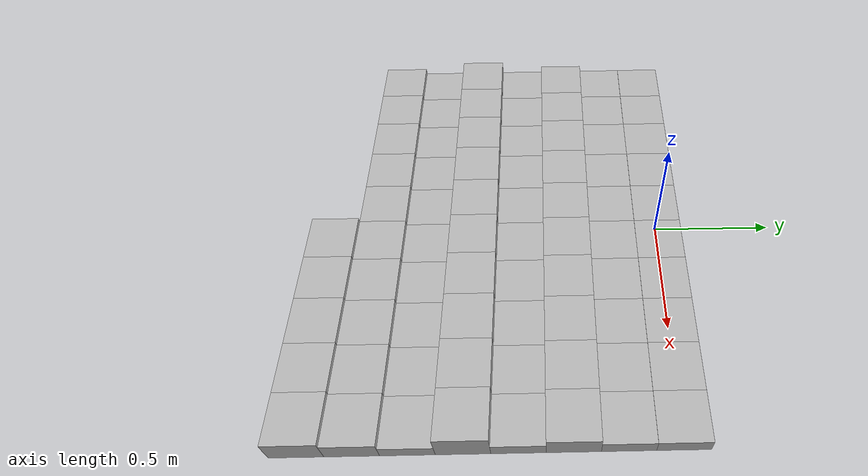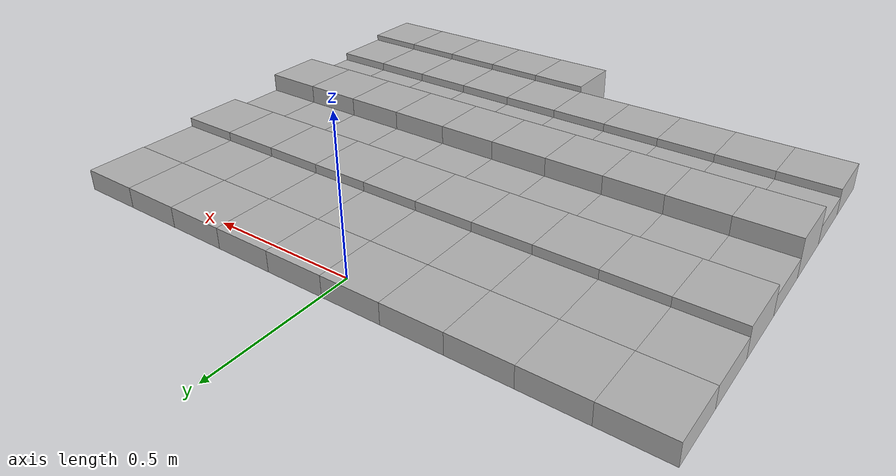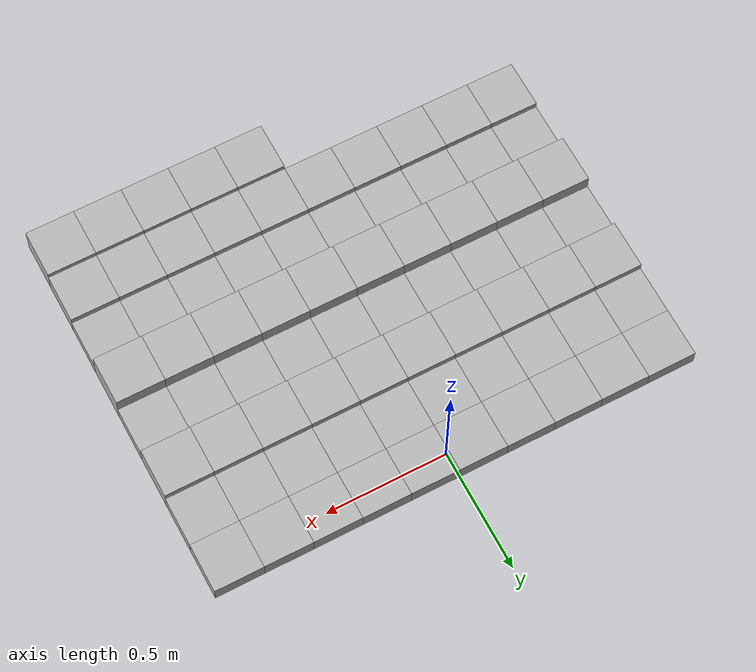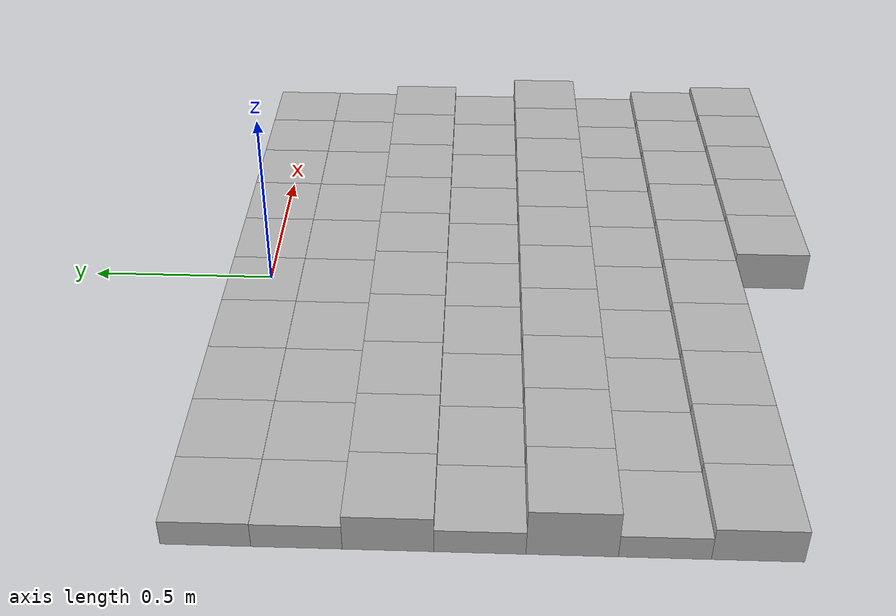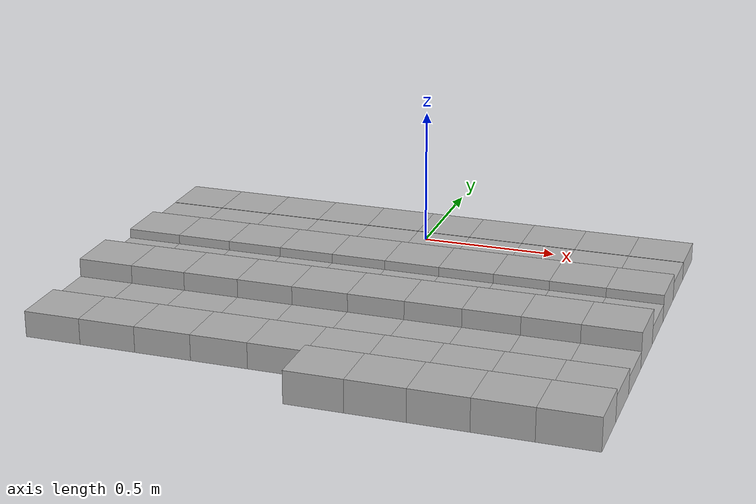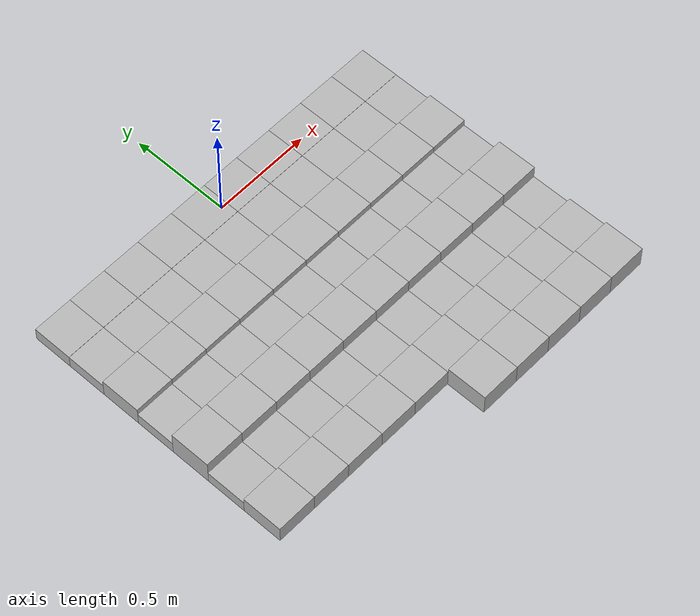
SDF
<sdf version="1.6">
 <model name="Terrain">
  <static>true</static>
  <link name="box_0_0">
   <pose>-0.9 0.0 0.0348015889081 0 0 0</pose>
   <inertial>
    <mass>1.0</mass>
    <inertia><ixx>0.0</ixx><ixy>0.0</ixy><ixz>0.0</ixz><iyy>0.0</iyy><iyz>0.0</iyz><izz>0.0</izz></inertia>
   </inertial>
   <collision name="collision"><geometry><box><size>0.2 0.2 0.0696031778162</size></box></geometry></collision>
   <visual name="visual"><geometry><box><size>0.2 0.2 0.0696031778162</size></box></geometry></visual>
  </link>
  <link name="box_0_1">
   <pose>-0.7 0.0 0.0348015889081 0 0 0</pose>
   <inertial>
    <mass>1.0</mass>
    <inertia><ixx>0.0</ixx><ixy>0.0</ixy><ixz>0.0</ixz><iyy>0.0</iyy><iyz>0.0</iyz><izz>0.0</izz></inertia>
   </inertial>
   <collision name="collision"><geometry><box><size>0.2 0.2 0.0696031778162</size></box></geometry></collision>
   <visual name="visual"><geometry><box><size>0.2 0.2 0.0696031778162</size></box></geometry></visual>
  </link>
  <link name="box_0_2">
   <pose>-0.5 0.0 0.0348015889081 0 0 0</pose>
   <inertial>
    <mass>1.0</mass>
    <inertia><ixx>0.0</ixx><ixy>0.0</ixy><ixz>0.0</ixz><iyy>0.0</iyy><iyz>0.0</iyz><izz>0.0</izz></inertia>
   </inertial>
   <collision name="collision"><geometry><box><size>0.2 0.2 0.0696031778162</size></box></geometry></collision>
   <visual name="visual"><geometry><box><size>0.2 0.2 0.0696031778162</size></box></geometry></visual>
  </link>
  <link name="box_0_3">
   <pose>-0.3 0.0 0.0348015889081 0 0 0</pose>
   <inertial>
    <mass>1.0</mass>
    <inertia><ixx>0.0</ixx><ixy>0.0</ixy><ixz>0.0</ixz><iyy>0.0</iyy><iyz>0.0</iyz><izz>0.0</izz></inertia>
   </inertial>
   <collision name="collision"><geometry><box><size>0.2 0.2 0.0696031778162</size></box></geometry></collision>
   <visual name="visual"><geometry><box><size>0.2 0.2 0.0696031778162</size></box></geometry></visual>
  </link>
  <link name="box_0_4">
   <pose>-0.1 0.0 0.0348015889081 0 0 0</pose>
   <inertial>
    <mass>1.0</mass>
    <inertia><ixx>0.0</ixx><ixy>0.0</ixy><ixz>0.0</ixz><iyy>0.0</iyy><iyz>0.0</iyz><izz>0.0</izz></inertia>
   </inertial>
   <collision name="collision"><geometry><box><size>0.2 0.2 0.0696031778162</size></box></geometry></collision>
   <visual name="visual"><geometry><box><size>0.2 0.2 0.0696031778162</size></box></geometry></visual>
  </link>
  <link name="box_0_5">
   <pose>0.1 0.0 0.0348015889081 0 0 0</pose>
   <inertial>
    <mass>1.0</mass>
    <inertia><ixx>0.0</ixx><ixy>0.0</ixy><ixz>0.0</ixz><iyy>0.0</iyy><iyz>0.0</iyz><izz>0.0</izz></inertia>
   </inertial>
   <collision name="collision"><geometry><box><size>0.2 0.2 0.0696031778162</size></box></geometry></collision>
   <visual name="visual"><geometry><box><size>0.2 0.2 0.0696031778162</size></box></geometry></visual>
  </link>
  <link name="box_0_6">
   <pose>0.3 0.0 0.0348015889081 0 0 0</pose>
   <inertial>
    <mass>1.0</mass>
    <inertia><ixx>0.0</ixx><ixy>0.0</ixy><ixz>0.0</ixz><iyy>0.0</iyy><iyz>0.0</iyz><izz>0.0</izz></inertia>
   </inertial>
   <collision name="collision"><geometry><box><size>0.2 0.2 0.0696031778162</size></box></geometry></collision>
   <visual name="visual"><geometry><box><size>0.2 0.2 0.0696031778162</size></box></geometry></visual>
  </link>
  <link name="box_0_7">
   <pose>0.5 0.0 0.0348015889081 0 0 0</pose>
   <inertial>
    <mass>1.0</mass>
    <inertia><ixx>0.0</ixx><ixy>0.0</ixy><ixz>0.0</ixz><iyy>0.0</iyy><iyz>0.0</iyz><izz>0.0</izz></inertia>
   </inertial>
   <collision name="collision"><geometry><box><size>0.2 0.2 0.0696031778162</size></box></geometry></collision>
   <visual name="visual"><geometry><box><size>0.2 0.2 0.0696031778162</size></box></geometry></visual>
  </link>
  <link name="box_0_8">
   <pose>0.7 0.0 0.0348015889081 0 0 0</pose>
   <inertial>
    <mass>1.0</mass>
    <inertia><ixx>0.0</ixx><ixy>0.0</ixy><ixz>0.0</ixz><iyy>0.0</iyy><iyz>0.0</iyz><izz>0.0</izz></inertia>
   </inertial>
   <collision name="collision"><geometry><box><size>0.2 0.2 0.0696031778162</size></box></geometry></collision>
   <visual name="visual"><geometry><box><size>0.2 0.2 0.0696031778162</size></box></geometry></visual>
  </link>
  <link name="box_0_9">
   <pose>0.9 0.0 0.0348015889081 0 0 0</pose>
   <inertial>
    <mass>1.0</mass>
    <inertia><ixx>0.0</ixx><ixy>0.0</ixy><ixz>0.0</ixz><iyy>0.0</iyy><iyz>0.0</iyz><izz>0.0</izz></inertia>
   </inertial>
   <collision name="collision"><geometry><box><size>0.2 0.2 0.0696031778162</size></box></geometry></collision>
   <visual name="visual"><geometry><box><size>0.2 0.2 0.0696031778162</size></box></geometry></visual>
  </link>
  <link name="box_1_0">
   <pose>-0.9 -0.2 0.0341718155319 0 0 0</pose>
   <inertial>
    <mass>1.0</mass>
    <inertia><ixx>0.0</ixx><ixy>0.0</ixy><ixz>0.0</ixz><iyy>0.0</iyy><iyz>0.0</iyz><izz>0.0</izz></inertia>
   </inertial>
   <collision name="collision"><geometry><box><size>0.2 0.2 0.0683436310638</size></box></geometry></collision>
   <visual name="visual"><geometry><box><size>0.2 0.2 0.0683436310638</size></box></geometry></visual>
  </link>
  <link name="box_1_1">
   <pose>-0.7 -0.2 0.0341718155319 0 0 0</pose>
   <inertial>
    <mass>1.0</mass>
    <inertia><ixx>0.0</ixx><ixy>0.0</ixy><ixz>0.0</ixz><iyy>0.0</iyy><iyz>0.0</iyz><izz>0.0</izz></inertia>
   </inertial>
   <collision name="collision"><geometry><box><size>0.2 0.2 0.0683436310638</size></box></geometry></collision>
   <visual name="visual"><geometry><box><size>0.2 0.2 0.0683436310638</size></box></geometry></visual>
  </link>
  <link name="box_1_2">
   <pose>-0.5 -0.2 0.0341718155319 0 0 0</pose>
   <inertial>
    <mass>1.0</mass>
    <inertia><ixx>0.0</ixx><ixy>0.0</ixy><ixz>0.0</ixz><iyy>0.0</iyy><iyz>0.0</iyz><izz>0.0</izz></inertia>
   </inertial>
   <collision name="collision"><geometry><box><size>0.2 0.2 0.0683436310638</size></box></geometry></collision>
   <visual name="visual"><geometry><box><size>0.2 0.2 0.0683436310638</size></box></geometry></visual>
  </link>
  <link name="box_1_3">
   <pose>-0.3 -0.2 0.0341718155319 0 0 0</pose>
   <inertial>
    <mass>1.0</mass>
    <inertia><ixx>0.0</ixx><ixy>0.0</ixy><ixz>0.0</ixz><iyy>0.0</iyy><iyz>0.0</iyz><izz>0.0</izz></inertia>
   </inertial>
   <collision name="collision"><geometry><box><size>0.2 0.2 0.0683436310638</size></box></geometry></collision>
   <visual name="visual"><geometry><box><size>0.2 0.2 0.0683436310638</size></box></geometry></visual>
  </link>
  <link name="box_1_4">
   <pose>-0.1 -0.2 0.0341718155319 0 0 0</pose>
   <inertial>
    <mass>1.0</mass>
    <inertia><ixx>0.0</ixx><ixy>0.0</ixy><ixz>0.0</ixz><iyy>0.0</iyy><iyz>0.0</iyz><izz>0.0</izz></inertia>
   </inertial>
   <collision name="collision"><geometry><box><size>0.2 0.2 0.0683436310638</size></box></geometry></collision>
   <visual name="visual"><geometry><box><size>0.2 0.2 0.0683436310638</size></box></geometry></visual>
  </link>
  <link name="box_1_5">
   <pose>0.1 -0.2 0.0341718155319 0 0 0</pose>
   <inertial>
    <mass>1.0</mass>
    <inertia><ixx>0.0</ixx><ixy>0.0</ixy><ixz>0.0</ixz><iyy>0.0</iyy><iyz>0.0</iyz><izz>0.0</izz></inertia>
   </inertial>
   <collision name="collision"><geometry><box><size>0.2 0.2 0.0683436310638</size></box></geometry></collision>
   <visual name="visual"><geometry><box><size>0.2 0.2 0.0683436310638</size></box></geometry></visual>
  </link>
  <link name="box_1_6">
   <pose>0.3 -0.2 0.0341718155319 0 0 0</pose>
   <inertial>
    <mass>1.0</mass>
    <inertia><ixx>0.0</ixx><ixy>0.0</ixy><ixz>0.0</ixz><iyy>0.0</iyy><iyz>0.0</iyz><izz>0.0</izz></inertia>
   </inertial>
   <collision name="collision"><geometry><box><size>0.2 0.2 0.0683436310638</size></box></geometry></collision>
   <visual name="visual"><geometry><box><size>0.2 0.2 0.0683436310638</size></box></geometry></visual>
  </link>
  <link name="box_1_7">
   <pose>0.5 -0.2 0.0341718155319 0 0 0</pose>
   <inertial>
    <mass>1.0</mass>
    <inertia><ixx>0.0</ixx><ixy>0.0</ixy><ixz>0.0</ixz><iyy>0.0</iyy><iyz>0.0</iyz><izz>0.0</izz></inertia>
   </inertial>
   <collision name="collision"><geometry><box><size>0.2 0.2 0.0683436310638</size></box></geometry></collision>
   <visual name="visual"><geometry><box><size>0.2 0.2 0.0683436310638</size></box></geometry></visual>
  </link>
  <link name="box_1_8">
   <pose>0.7 -0.2 0.0341718155319 0 0 0</pose>
   <inertial>
    <mass>1.0</mass>
    <inertia><ixx>0.0</ixx><ixy>0.0</ixy><ixz>0.0</ixz><iyy>0.0</iyy><iyz>0.0</iyz><izz>0.0</izz></inertia>
   </inertial>
   <collision name="collision"><geometry><box><size>0.2 0.2 0.0683436310638</size></box></geometry></collision>
   <visual name="visual"><geometry><box><size>0.2 0.2 0.0683436310638</size></box></geometry></visual>
  </link>
  <link name="box_1_9">
   <pose>0.9 -0.2 0.0341718155319 0 0 0</pose>
   <inertial>
    <mass>1.0</mass>
    <inertia><ixx>0.0</ixx><ixy>0.0</ixy><ixz>0.0</ixz><iyy>0.0</iyy><iyz>0.0</iyz><izz>0.0</izz></inertia>
   </inertial>
   <collision name="collision"><geometry><box><size>0.2 0.2 0.0683436310638</size></box></geometry></collision>
   <visual name="visual"><geometry><box><size>0.2 0.2 0.0683436310638</size></box></geometry></visual>
  </link>
  <link name="box_2_0">
   <pose>-0.9 -0.4 0.0497409913647 0 0 0</pose>
   <inertial>
    <mass>1.0</mass>
    <inertia><ixx>0.0</ixx><ixy>0.0</ixy><ixz>0.0</ixz><iyy>0.0</iyy><iyz>0.0</iyz><izz>0.0</izz></inertia>
   </inertial>
   <collision name="collision"><geometry><box><size>0.2 0.2 0.0994819827294</size></box></geometry></collision>
   <visual name="visual"><geometry><box><size>0.2 0.2 0.0994819827294</size></box></geometry></visual>
  </link>
  <link name="box_2_1">
   <pose>-0.7 -0.4 0.0497409913647 0 0 0</pose>
   <inertial>
    <mass>1.0</mass>
    <inertia><ixx>0.0</ixx><ixy>0.0</ixy><ixz>0.0</ixz><iyy>0.0</iyy><iyz>0.0</iyz><izz>0.0</izz></inertia>
   </inertial>
   <collision name="collision"><geometry><box><size>0.2 0.2 0.0994819827294</size></box></geometry></collision>
   <visual name="visual"><geometry><box><size>0.2 0.2 0.0994819827294</size></box></geometry></visual>
  </link>
  <link name="box_2_2">
   <pose>-0.5 -0.4 0.0497409913647 0 0 0</pose>
   <inertial>
    <mass>1.0</mass>
    <inertia><ixx>0.0</ixx><ixy>0.0</ixy><ixz>0.0</ixz><iyy>0.0</iyy><iyz>0.0</iyz><izz>0.0</izz></inertia>
   </inertial>
   <collision name="collision"><geometry><box><size>0.2 0.2 0.0994819827294</size></box></geometry></collision>
   <visual name="visual"><geometry><box><size>0.2 0.2 0.0994819827294</size></box></geometry></visual>
  </link>
  <link name="box_2_3">
   <pose>-0.3 -0.4 0.0497409913647 0 0 0</pose>
   <inertial>
    <mass>1.0</mass>
    <inertia><ixx>0.0</ixx><ixy>0.0</ixy><ixz>0.0</ixz><iyy>0.0</iyy><iyz>0.0</iyz><izz>0.0</izz></inertia>
   </inertial>
   <collision name="collision"><geometry><box><size>0.2 0.2 0.0994819827294</size></box></geometry></collision>
   <visual name="visual"><geometry><box><size>0.2 0.2 0.0994819827294</size></box></geometry></visual>
  </link>
  <link name="box_2_4">
   <pose>-0.1 -0.4 0.0497409913647 0 0 0</pose>
   <inertial>
    <mass>1.0</mass>
    <inertia><ixx>0.0</ixx><ixy>0.0</ixy><ixz>0.0</ixz><iyy>0.0</iyy><iyz>0.0</iyz><izz>0.0</izz></inertia>
   </inertial>
   <collision name="collision"><geometry><box><size>0.2 0.2 0.0994819827294</size></box></geometry></collision>
   <visual name="visual"><geometry><box><size>0.2 0.2 0.0994819827294</size></box></geometry></visual>
  </link>
  <link name="box_2_5">
   <pose>0.1 -0.4 0.0497409913647 0 0 0</pose>
   <inertial>
    <mass>1.0</mass>
    <inertia><ixx>0.0</ixx><ixy>0.0</ixy><ixz>0.0</ixz><iyy>0.0</iyy><iyz>0.0</iyz><izz>0.0</izz></inertia>
   </inertial>
   <collision name="collision"><geometry><box><size>0.2 0.2 0.0994819827294</size></box></geometry></collision>
   <visual name="visual"><geometry><box><size>0.2 0.2 0.0994819827294</size></box></geometry></visual>
  </link>
  <link name="box_2_6">
   <pose>0.3 -0.4 0.0497409913647 0 0 0</pose>
   <inertial>
    <mass>1.0</mass>
    <inertia><ixx>0.0</ixx><ixy>0.0</ixy><ixz>0.0</ixz><iyy>0.0</iyy><iyz>0.0</iyz><izz>0.0</izz></inertia>
   </inertial>
   <collision name="collision"><geometry><box><size>0.2 0.2 0.0994819827294</size></box></geometry></collision>
   <visual name="visual"><geometry><box><size>0.2 0.2 0.0994819827294</size></box></geometry></visual>
  </link>
  <link name="box_2_7">
   <pose>0.5 -0.4 0.0497409913647 0 0 0</pose>
   <inertial>
    <mass>1.0</mass>
    <inertia><ixx>0.0</ixx><ixy>0.0</ixy><ixz>0.0</ixz><iyy>0.0</iyy><iyz>0.0</iyz><izz>0.0</izz></inertia>
   </inertial>
   <collision name="collision"><geometry><box><size>0.2 0.2 0.0994819827294</size></box></geometry></collision>
   <visual name="visual"><geometry><box><size>0.2 0.2 0.0994819827294</size></box></geometry></visual>
  </link>
  <link name="box_2_8">
   <pose>0.7 -0.4 0.0497409913647 0 0 0</pose>
   <inertial>
    <mass>1.0</mass>
    <inertia><ixx>0.0</ixx><ixy>0.0</ixy><ixz>0.0</ixz><iyy>0.0</iyy><iyz>0.0</iyz><izz>0.0</izz></inertia>
   </inertial>
   <collision name="collision"><geometry><box><size>0.2 0.2 0.0994819827294</size></box></geometry></collision>
   <visual name="visual"><geometry><box><size>0.2 0.2 0.0994819827294</size></box></geometry></visual>
  </link>
  <link name="box_2_9">
   <pose>0.9 -0.4 0.0497409913647 0 0 0</pose>
   <inertial>
    <mass>1.0</mass>
    <inertia><ixx>0.0</ixx><ixy>0.0</ixy><ixz>0.0</ixz><iyy>0.0</iyy><iyz>0.0</iyz><izz>0.0</izz></inertia>
   </inertial>
   <collision name="collision"><geometry><box><size>0.2 0.2 0.0994819827294</size></box></geometry></collision>
   <visual name="visual"><geometry><box><size>0.2 0.2 0.0994819827294</size></box></geometry></visual>
  </link>
  <link name="box_3_0">
   <pose>-0.9 -0.6 0.0327592160162 0 0 0</pose>
   <inertial>
    <mass>1.0</mass>
    <inertia><ixx>0.0</ixx><ixy>0.0</ixy><ixz>0.0</ixz><iyy>0.0</iyy><iyz>0.0</iyz><izz>0.0</izz></inertia>
   </inertial>
   <collision name="collision"><geometry><box><size>0.2 0.2 0.0655184320325</size></box></geometry></collision>
   <visual name="visual"><geometry><box><size>0.2 0.2 0.0655184320325</size></box></geometry></visual>
  </link>
  <link name="box_3_1">
   <pose>-0.7 -0.6 0.0327592160162 0 0 0</pose>
   <inertial>
    <mass>1.0</mass>
    <inertia><ixx>0.0</ixx><ixy>0.0</ixy><ixz>0.0</ixz><iyy>0.0</iyy><iyz>0.0</iyz><izz>0.0</izz></inertia>
   </inertial>
   <collision name="collision"><geometry><box><size>0.2 0.2 0.0655184320325</size></box></geometry></collision>
   <visual name="visual"><geometry><box><size>0.2 0.2 0.0655184320325</size></box></geometry></visual>
  </link>
  <link name="box_3_2">
   <pose>-0.5 -0.6 0.0327592160162 0 0 0</pose>
   <inertial>
    <mass>1.0</mass>
    <inertia><ixx>0.0</ixx><ixy>0.0</ixy><ixz>0.0</ixz><iyy>0.0</iyy><iyz>0.0</iyz><izz>0.0</izz></inertia>
   </inertial>
   <collision name="collision"><geometry><box><size>0.2 0.2 0.0655184320325</size></box></geometry></collision>
   <visual name="visual"><geometry><box><size>0.2 0.2 0.0655184320325</size></box></geometry></visual>
  </link>
  <link name="box_3_3">
   <pose>-0.3 -0.6 0.0327592160162 0 0 0</pose>
   <inertial>
    <mass>1.0</mass>
    <inertia><ixx>0.0</ixx><ixy>0.0</ixy><ixz>0.0</ixz><iyy>0.0</iyy><iyz>0.0</iyz><izz>0.0</izz></inertia>
   </inertial>
   <collision name="collision"><geometry><box><size>0.2 0.2 0.0655184320325</size></box></geometry></collision>
   <visual name="visual"><geometry><box><size>0.2 0.2 0.0655184320325</size></box></geometry></visual>
  </link>
  <link name="box_3_4">
   <pose>-0.1 -0.6 0.0327592160162 0 0 0</pose>
   <inertial>
    <mass>1.0</mass>
    <inertia><ixx>0.0</ixx><ixy>0.0</ixy><ixz>0.0</ixz><iyy>0.0</iyy><iyz>0.0</iyz><izz>0.0</izz></inertia>
   </inertial>
   <collision name="collision"><geometry><box><size>0.2 0.2 0.0655184320325</size></box></geometry></collision>
   <visual name="visual"><geometry><box><size>0.2 0.2 0.0655184320325</size></box></geometry></visual>
  </link>
  <link name="box_3_5">
   <pose>0.1 -0.6 0.0327592160162 0 0 0</pose>
   <inertial>
    <mass>1.0</mass>
    <inertia><ixx>0.0</ixx><ixy>0.0</ixy><ixz>0.0</ixz><iyy>0.0</iyy><iyz>0.0</iyz><izz>0.0</izz></inertia>
   </inertial>
   <collision name="collision"><geometry><box><size>0.2 0.2 0.0655184320325</size></box></geometry></collision>
   <visual name="visual"><geometry><box><size>0.2 0.2 0.0655184320325</size></box></geometry></visual>
  </link>
  <link name="box_3_6">
   <pose>0.3 -0.6 0.0327592160162 0 0 0</pose>
   <inertial>
    <mass>1.0</mass>
    <inertia><ixx>0.0</ixx><ixy>0.0</ixy><ixz>0.0</ixz><iyy>0.0</iyy><iyz>0.0</iyz><izz>0.0</izz></inertia>
   </inertial>
   <collision name="collision"><geometry><box><size>0.2 0.2 0.0655184320325</size></box></geometry></collision>
   <visual name="visual"><geometry><box><size>0.2 0.2 0.0655184320325</size></box></geometry></visual>
  </link>
  <link name="box_3_7">
   <pose>0.5 -0.6 0.0327592160162 0 0 0</pose>
   <inertial>
    <mass>1.0</mass>
    <inertia><ixx>0.0</ixx><ixy>0.0</ixy><ixz>0.0</ixz><iyy>0.0</iyy><iyz>0.0</iyz><izz>0.0</izz></inertia>
   </inertial>
   <collision name="collision"><geometry><box><size>0.2 0.2 0.0655184320325</size></box></geometry></collision>
   <visual name="visual"><geometry><box><size>0.2 0.2 0.0655184320325</size></box></geometry></visual>
  </link>
  <link name="box_3_8">
   <pose>0.7 -0.6 0.0327592160162 0 0 0</pose>
   <inertial>
    <mass>1.0</mass>
    <inertia><ixx>0.0</ixx><ixy>0.0</ixy><ixz>0.0</ixz><iyy>0.0</iyy><iyz>0.0</iyz><izz>0.0</izz></inertia>
   </inertial>
   <collision name="collision"><geometry><box><size>0.2 0.2 0.0655184320325</size></box></geometry></collision>
   <visual name="visual"><geometry><box><size>0.2 0.2 0.0655184320325</size></box></geometry></visual>
  </link>
  <link name="box_3_9">
   <pose>0.9 -0.6 0.0327592160162 0 0 0</pose>
   <inertial>
    <mass>1.0</mass>
    <inertia><ixx>0.0</ixx><ixy>0.0</ixy><ixz>0.0</ixz><iyy>0.0</iyy><iyz>0.0</iyz><izz>0.0</izz></inertia>
   </inertial>
   <collision name="collision"><geometry><box><size>0.2 0.2 0.0655184320325</size></box></geometry></collision>
   <visual name="visual"><geometry><box><size>0.2 0.2 0.0655184320325</size></box></geometry></visual>
  </link>
  <link name="box_4_0">
   <pose>-0.9 -0.8 0.0648879430686 0 0 0</pose>
   <inertial>
    <mass>1.0</mass>
    <inertia><ixx>0.0</ixx><ixy>0.0</ixy><ixz>0.0</ixz><iyy>0.0</iyy><iyz>0.0</iyz><izz>0.0</izz></inertia>
   </inertial>
   <collision name="collision"><geometry><box><size>0.2 0.2 0.129775886137</size></box></geometry></collision>
   <visual name="visual"><geometry><box><size>0.2 0.2 0.129775886137</size></box></geometry></visual>
  </link>
  <link name="box_4_1">
   <pose>-0.7 -0.8 0.0648879430686 0 0 0</pose>
   <inertial>
    <mass>1.0</mass>
    <inertia><ixx>0.0</ixx><ixy>0.0</ixy><ixz>0.0</ixz><iyy>0.0</iyy><iyz>0.0</iyz><izz>0.0</izz></inertia>
   </inertial>
   <collision name="collision"><geometry><box><size>0.2 0.2 0.129775886137</size></box></geometry></collision>
   <visual name="visual"><geometry><box><size>0.2 0.2 0.129775886137</size></box></geometry></visual>
  </link>
  <link name="box_4_2">
   <pose>-0.5 -0.8 0.0648879430686 0 0 0</pose>
   <inertial>
    <mass>1.0</mass>
    <inertia><ixx>0.0</ixx><ixy>0.0</ixy><ixz>0.0</ixz><iyy>0.0</iyy><iyz>0.0</iyz><izz>0.0</izz></inertia>
   </inertial>
   <collision name="collision"><geometry><box><size>0.2 0.2 0.129775886137</size></box></geometry></collision>
   <visual name="visual"><geometry><box><size>0.2 0.2 0.129775886137</size></box></geometry></visual>
  </link>
  <link name="box_4_3">
   <pose>-0.3 -0.8 0.0648879430686 0 0 0</pose>
   <inertial>
    <mass>1.0</mass>
    <inertia><ixx>0.0</ixx><ixy>0.0</ixy><ixz>0.0</ixz><iyy>0.0</iyy><iyz>0.0</iyz><izz>0.0</izz></inertia>
   </inertial>
   <collision name="collision"><geometry><box><size>0.2 0.2 0.129775886137</size></box></geometry></collision>
   <visual name="visual"><geometry><box><size>0.2 0.2 0.129775886137</size></box></geometry></visual>
  </link>
  <link name="box_4_4">
   <pose>-0.1 -0.8 0.0648879430686 0 0 0</pose>
   <inertial>
    <mass>1.0</mass>
    <inertia><ixx>0.0</ixx><ixy>0.0</ixy><ixz>0.0</ixz><iyy>0.0</iyy><iyz>0.0</iyz><izz>0.0</izz></inertia>
   </inertial>
   <collision name="collision"><geometry><box><size>0.2 0.2 0.129775886137</size></box></geometry></collision>
   <visual name="visual"><geometry><box><size>0.2 0.2 0.129775886137</size></box></geometry></visual>
  </link>
  <link name="box_4_5">
   <pose>0.1 -0.8 0.0648879430686 0 0 0</pose>
   <inertial>
    <mass>1.0</mass>
    <inertia><ixx>0.0</ixx><ixy>0.0</ixy><ixz>0.0</ixz><iyy>0.0</iyy><iyz>0.0</iyz><izz>0.0</izz></inertia>
   </inertial>
   <collision name="collision"><geometry><box><size>0.2 0.2 0.129775886137</size></box></geometry></collision>
   <visual name="visual"><geometry><box><size>0.2 0.2 0.129775886137</size></box></geometry></visual>
  </link>
  <link name="box_4_6">
   <pose>0.3 -0.8 0.0648879430686 0 0 0</pose>
   <inertial>
    <mass>1.0</mass>
    <inertia><ixx>0.0</ixx><ixy>0.0</ixy><ixz>0.0</ixz><iyy>0.0</iyy><iyz>0.0</iyz><izz>0.0</izz></inertia>
   </inertial>
   <collision name="collision"><geometry><box><size>0.2 0.2 0.129775886137</size></box></geometry></collision>
   <visual name="visual"><geometry><box><size>0.2 0.2 0.129775886137</size></box></geometry></visual>
  </link>
  <link name="box_4_7">
   <pose>0.5 -0.8 0.0648879430686 0 0 0</pose>
   <inertial>
    <mass>1.0</mass>
    <inertia><ixx>0.0</ixx><ixy>0.0</ixy><ixz>0.0</ixz><iyy>0.0</iyy><iyz>0.0</iyz><izz>0.0</izz></inertia>
   </inertial>
   <collision name="collision"><geometry><box><size>0.2 0.2 0.129775886137</size></box></geometry></collision>
   <visual name="visual"><geometry><box><size>0.2 0.2 0.129775886137</size></box></geometry></visual>
  </link>
  <link name="box_4_8">
   <pose>0.7 -0.8 0.0648879430686 0 0 0</pose>
   <inertial>
    <mass>1.0</mass>
    <inertia><ixx>0.0</ixx><ixy>0.0</ixy><ixz>0.0</ixz><iyy>0.0</iyy><iyz>0.0</iyz><izz>0.0</izz></inertia>
   </inertial>
   <collision name="collision"><geometry><box><size>0.2 0.2 0.129775886137</size></box></geometry></collision>
   <visual name="visual"><geometry><box><size>0.2 0.2 0.129775886137</size></box></geometry></visual>
  </link>
  <link name="box_4_9">
   <pose>0.9 -0.8 0.0648879430686 0 0 0</pose>
   <inertial>
    <mass>1.0</mass>
    <inertia><ixx>0.0</ixx><ixy>0.0</ixy><ixz>0.0</ixz><iyy>0.0</iyy><iyz>0.0</iyz><izz>0.0</izz></inertia>
   </inertial>
   <collision name="collision"><geometry><box><size>0.2 0.2 0.129775886137</size></box></geometry></collision>
   <visual name="visual"><geometry><box><size>0.2 0.2 0.129775886137</size></box></geometry></visual>
  </link>
  <link name="box_5_0">
   <pose>-0.9 -1.0 0.0317920082011 0 0 0</pose>
   <inertial>
    <mass>1.0</mass>
    <inertia><ixx>0.0</ixx><ixy>0.0</ixy><ixz>0.0</ixz><iyy>0.0</iyy><iyz>0.0</iyz><izz>0.0</izz></inertia>
   </inertial>
   <collision name="collision"><geometry><box><size>0.2 0.2 0.0635840164021</size></box></geometry></collision>
   <visual name="visual"><geometry><box><size>0.2 0.2 0.0635840164021</size></box></geometry></visual>
  </link>
  <link name="box_5_1">
   <pose>-0.7 -1.0 0.0317920082011 0 0 0</pose>
   <inertial>
    <mass>1.0</mass>
    <inertia><ixx>0.0</ixx><ixy>0.0</ixy><ixz>0.0</ixz><iyy>0.0</iyy><iyz>0.0</iyz><izz>0.0</izz></inertia>
   </inertial>
   <collision name="collision"><geometry><box><size>0.2 0.2 0.0635840164021</size></box></geometry></collision>
   <visual name="visual"><geometry><box><size>0.2 0.2 0.0635840164021</size></box></geometry></visual>
  </link>
  <link name="box_5_2">
   <pose>-0.5 -1.0 0.0317920082011 0 0 0</pose>
   <inertial>
    <mass>1.0</mass>
    <inertia><ixx>0.0</ixx><ixy>0.0</ixy><ixz>0.0</ixz><iyy>0.0</iyy><iyz>0.0</iyz><izz>0.0</izz></inertia>
   </inertial>
   <collision name="collision"><geometry><box><size>0.2 0.2 0.0635840164021</size></box></geometry></collision>
   <visual name="visual"><geometry><box><size>0.2 0.2 0.0635840164021</size></box></geometry></visual>
  </link>
  <link name="box_5_3">
   <pose>-0.3 -1.0 0.0317920082011 0 0 0</pose>
   <inertial>
    <mass>1.0</mass>
    <inertia><ixx>0.0</ixx><ixy>0.0</ixy><ixz>0.0</ixz><iyy>0.0</iyy><iyz>0.0</iyz><izz>0.0</izz></inertia>
   </inertial>
   <collision name="collision"><geometry><box><size>0.2 0.2 0.0635840164021</size></box></geometry></collision>
   <visual name="visual"><geometry><box><size>0.2 0.2 0.0635840164021</size></box></geometry></visual>
  </link>
  <link name="box_5_4">
   <pose>-0.1 -1.0 0.0317920082011 0 0 0</pose>
   <inertial>
    <mass>1.0</mass>
    <inertia><ixx>0.0</ixx><ixy>0.0</ixy><ixz>0.0</ixz><iyy>0.0</iyy><iyz>0.0</iyz><izz>0.0</izz></inertia>
   </inertial>
   <collision name="collision"><geometry><box><size>0.2 0.2 0.0635840164021</size></box></geometry></collision>
   <visual name="visual"><geometry><box><size>0.2 0.2 0.0635840164021</size></box></geometry></visual>
  </link>
  <link name="box_5_5">
   <pose>0.1 -1.0 0.0317920082011 0 0 0</pose>
   <inertial>
    <mass>1.0</mass>
    <inertia><ixx>0.0</ixx><ixy>0.0</ixy><ixz>0.0</ixz><iyy>0.0</iyy><iyz>0.0</iyz><izz>0.0</izz></inertia>
   </inertial>
   <collision name="collision"><geometry><box><size>0.2 0.2 0.0635840164021</size></box></geometry></collision>
   <visual name="visual"><geometry><box><size>0.2 0.2 0.0635840164021</size></box></geometry></visual>
  </link>
  <link name="box_5_6">
   <pose>0.3 -1.0 0.0317920082011 0 0 0</pose>
   <inertial>
    <mass>1.0</mass>
    <inertia><ixx>0.0</ixx><ixy>0.0</ixy><ixz>0.0</ixz><iyy>0.0</iyy><iyz>0.0</iyz><izz>0.0</izz></inertia>
   </inertial>
   <collision name="collision"><geometry><box><size>0.2 0.2 0.0635840164021</size></box></geometry></collision>
   <visual name="visual"><geometry><box><size>0.2 0.2 0.0635840164021</size></box></geometry></visual>
  </link>
  <link name="box_5_7">
   <pose>0.5 -1.0 0.0317920082011 0 0 0</pose>
   <inertial>
    <mass>1.0</mass>
    <inertia><ixx>0.0</ixx><ixy>0.0</ixy><ixz>0.0</ixz><iyy>0.0</iyy><iyz>0.0</iyz><izz>0.0</izz></inertia>
   </inertial>
   <collision name="collision"><geometry><box><size>0.2 0.2 0.0635840164021</size></box></geometry></collision>
   <visual name="visual"><geometry><box><size>0.2 0.2 0.0635840164021</size></box></geometry></visual>
  </link>
  <link name="box_5_8">
   <pose>0.7 -1.0 0.0317920082011 0 0 0</pose>
   <inertial>
    <mass>1.0</mass>
    <inertia><ixx>0.0</ixx><ixy>0.0</ixy><ixz>0.0</ixz><iyy>0.0</iyy><iyz>0.0</iyz><izz>0.0</izz></inertia>
   </inertial>
   <collision name="collision"><geometry><box><size>0.2 0.2 0.0635840164021</size></box></geometry></collision>
   <visual name="visual"><geometry><box><size>0.2 0.2 0.0635840164021</size></box></geometry></visual>
  </link>
  <link name="box_5_9">
   <pose>0.9 -1.0 0.0317920082011 0 0 0</pose>
   <inertial>
    <mass>1.0</mass>
    <inertia><ixx>0.0</ixx><ixy>0.0</ixy><ixz>0.0</ixz><iyy>0.0</iyy><iyz>0.0</iyz><izz>0.0</izz></inertia>
   </inertial>
   <collision name="collision"><geometry><box><size>0.2 0.2 0.0635840164021</size></box></geometry></collision>
   <visual name="visual"><geometry><box><size>0.2 0.2 0.0635840164021</size></box></geometry></visual>
  </link>
  <link name="box_6_0">
   <pose>-0.9 -1.2 0.0460624468934 0 0 0</pose>
   <inertial>
    <mass>1.0</mass>
    <inertia><ixx>0.0</ixx><ixy>0.0</ixy><ixz>0.0</ixz><iyy>0.0</iyy><iyz>0.0</iyz><izz>0.0</izz></inertia>
   </inertial>
   <collision name="collision"><geometry><box><size>0.2 0.2 0.0921248937868</size></box></geometry></collision>
   <visual name="visual"><geometry><box><size>0.2 0.2 0.0921248937868</size></box></geometry></visual>
  </link>
  <link name="box_6_1">
   <pose>-0.7 -1.2 0.0460624468934 0 0 0</pose>
   <inertial>
    <mass>1.0</mass>
    <inertia><ixx>0.0</ixx><ixy>0.0</ixy><ixz>0.0</ixz><iyy>0.0</iyy><iyz>0.0</iyz><izz>0.0</izz></inertia>
   </inertial>
   <collision name="collision"><geometry><box><size>0.2 0.2 0.0921248937868</size></box></geometry></collision>
   <visual name="visual"><geometry><box><size>0.2 0.2 0.0921248937868</size></box></geometry></visual>
  </link>
  <link name="box_6_2">
   <pose>-0.5 -1.2 0.0460624468934 0 0 0</pose>
   <inertial>
    <mass>1.0</mass>
    <inertia><ixx>0.0</ixx><ixy>0.0</ixy><ixz>0.0</ixz><iyy>0.0</iyy><iyz>0.0</iyz><izz>0.0</izz></inertia>
   </inertial>
   <collision name="collision"><geometry><box><size>0.2 0.2 0.0921248937868</size></box></geometry></collision>
   <visual name="visual"><geometry><box><size>0.2 0.2 0.0921248937868</size></box></geometry></visual>
  </link>
  <link name="box_6_3">
   <pose>-0.3 -1.2 0.0460624468934 0 0 0</pose>
   <inertial>
    <mass>1.0</mass>
    <inertia><ixx>0.0</ixx><ixy>0.0</ixy><ixz>0.0</ixz><iyy>0.0</iyy><iyz>0.0</iyz><izz>0.0</izz></inertia>
   </inertial>
   <collision name="collision"><geometry><box><size>0.2 0.2 0.0921248937868</size></box></geometry></collision>
   <visual name="visual"><geometry><box><size>0.2 0.2 0.0921248937868</size></box></geometry></visual>
  </link>
  <link name="box_6_4">
   <pose>-0.1 -1.2 0.0460624468934 0 0 0</pose>
   <inertial>
    <mass>1.0</mass>
    <inertia><ixx>0.0</ixx><ixy>0.0</ixy><ixz>0.0</ixz><iyy>0.0</iyy><iyz>0.0</iyz><izz>0.0</izz></inertia>
   </inertial>
   <collision name="collision"><geometry><box><size>0.2 0.2 0.0921248937868</size></box></geometry></collision>
   <visual name="visual"><geometry><box><size>0.2 0.2 0.0921248937868</size></box></geometry></visual>
  </link>
  <link name="box_6_5">
   <pose>0.1 -1.2 0.0460624468934 0 0 0</pose>
   <inertial>
    <mass>1.0</mass>
    <inertia><ixx>0.0</ixx><ixy>0.0</ixy><ixz>0.0</ixz><iyy>0.0</iyy><iyz>0.0</iyz><izz>0.0</izz></inertia>
   </inertial>
   <collision name="collision"><geometry><box><size>0.2 0.2 0.0921248937868</size></box></geometry></collision>
   <visual name="visual"><geometry><box><size>0.2 0.2 0.0921248937868</size></box></geometry></visual>
  </link>
  <link name="box_6_6">
   <pose>0.3 -1.2 0.0460624468934 0 0 0</pose>
   <inertial>
    <mass>1.0</mass>
    <inertia><ixx>0.0</ixx><ixy>0.0</ixy><ixz>0.0</ixz><iyy>0.0</iyy><iyz>0.0</iyz><izz>0.0</izz></inertia>
   </inertial>
   <collision name="collision"><geometry><box><size>0.2 0.2 0.0921248937868</size></box></geometry></collision>
   <visual name="visual"><geometry><box><size>0.2 0.2 0.0921248937868</size></box></geometry></visual>
  </link>
  <link name="box_6_7">
   <pose>0.5 -1.2 0.0460624468934 0 0 0</pose>
   <inertial>
    <mass>1.0</mass>
    <inertia><ixx>0.0</ixx><ixy>0.0</ixy><ixz>0.0</ixz><iyy>0.0</iyy><iyz>0.0</iyz><izz>0.0</izz></inertia>
   </inertial>
   <collision name="collision"><geometry><box><size>0.2 0.2 0.0921248937868</size></box></geometry></collision>
   <visual name="visual"><geometry><box><size>0.2 0.2 0.0921248937868</size></box></geometry></visual>
  </link>
  <link name="box_6_8">
   <pose>0.7 -1.2 0.0460624468934 0 0 0</pose>
   <inertial>
    <mass>1.0</mass>
    <inertia><ixx>0.0</ixx><ixy>0.0</ixy><ixz>0.0</ixz><iyy>0.0</iyy><iyz>0.0</iyz><izz>0.0</izz></inertia>
   </inertial>
   <collision name="collision"><geometry><box><size>0.2 0.2 0.0921248937868</size></box></geometry></collision>
   <visual name="visual"><geometry><box><size>0.2 0.2 0.0921248937868</size></box></geometry></visual>
  </link>
  <link name="box_6_9">
   <pose>0.9 -1.2 0.0460624468934 0 0 0</pose>
   <inertial>
    <mass>1.0</mass>
    <inertia><ixx>0.0</ixx><ixy>0.0</ixy><ixz>0.0</ixz><iyy>0.0</iyy><iyz>0.0</iyz><izz>0.0</izz></inertia>
   </inertial>
   <collision name="collision"><geometry><box><size>0.2 0.2 0.0921248937868</size></box></geometry></collision>
   <visual name="visual"><geometry><box><size>0.2 0.2 0.0921248937868</size></box></geometry></visual>
  </link>
  <link name="box_7_5">
   <pose>0.1 -1.4 0.0568242273233 0 0 0</pose>
   <inertial>
    <mass>1.0</mass>
    <inertia><ixx>0.0</ixx><ixy>0.0</ixy><ixz>0.0</ixz><iyy>0.0</iyy><iyz>0.0</iyz><izz>0.0</izz></inertia>
   </inertial>
   <collision name="collision"><geometry><box><size>0.2 0.2 0.113648454647</size></box></geometry></collision>
   <visual name="visual"><geometry><box><size>0.2 0.2 0.113648454647</size></box></geometry></visual>
  </link>
  <link name="box_7_6">
   <pose>0.3 -1.4 0.0568242273233 0 0 0</pose>
   <inertial>
    <mass>1.0</mass>
    <inertia><ixx>0.0</ixx><ixy>0.0</ixy><ixz>0.0</ixz><iyy>0.0</iyy><iyz>0.0</iyz><izz>0.0</izz></inertia>
   </inertial>
   <collision name="collision"><geometry><box><size>0.2 0.2 0.113648454647</size></box></geometry></collision>
   <visual name="visual"><geometry><box><size>0.2 0.2 0.113648454647</size></box></geometry></visual>
  </link>
  <link name="box_7_7">
   <pose>0.5 -1.4 0.0568242273233 0 0 0</pose>
   <inertial>
    <mass>1.0</mass>
    <inertia><ixx>0.0</ixx><ixy>0.0</ixy><ixz>0.0</ixz><iyy>0.0</iyy><iyz>0.0</iyz><izz>0.0</izz></inertia>
   </inertial>
   <collision name="collision"><geometry><box><size>0.2 0.2 0.113648454647</size></box></geometry></collision>
   <visual name="visual"><geometry><box><size>0.2 0.2 0.113648454647</size></box></geometry></visual>
  </link>
  <link name="box_7_8">
   <pose>0.7 -1.4 0.0568242273233 0 0 0</pose>
   <inertial>
    <mass>1.0</mass>
    <inertia><ixx>0.0</ixx><ixy>0.0</ixy><ixz>0.0</ixz><iyy>0.0</iyy><iyz>0.0</iyz><izz>0.0</izz></inertia>
   </inertial>
   <collision name="collision"><geometry><box><size>0.2 0.2 0.113648454647</size></box></geometry></collision>
   <visual name="visual"><geometry><box><size>0.2 0.2 0.113648454647</size></box></geometry></visual>
  </link>
  <link name="box_7_9">
   <pose>0.9 -1.4 0.0568242273233 0 0 0</pose>
   <inertial>
    <mass>1.0</mass>
    <inertia><ixx>0.0</ixx><ixy>0.0</ixy><ixz>0.0</ixz><iyy>0.0</iyy><iyz>0.0</iyz><izz>0.0</izz></inertia>
   </inertial>
   <collision name="collision"><geometry><box><size>0.2 0.2 0.113648454647</size></box></geometry></collision>
   <visual name="visual"><geometry><box><size>0.2 0.2 0.113648454647</size></box></geometry></visual>
  </link>
 </model>
</sdf>
